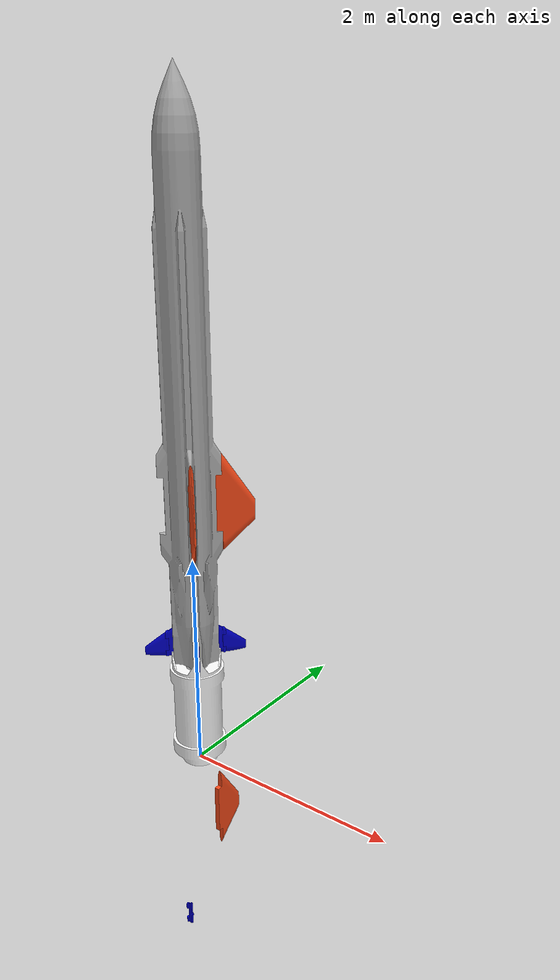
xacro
<?xml version="1.0" ?>
<robot name="exocet_mm40b3" xmlns:xacro="http://www.ros.org/wiki/xacro">

<xacro:include filename="$(find exocet_mm40b3_description)/urdf/materials.xacro" />
<xacro:include filename="$(find exocet_mm40b3_description)/urdf/exocet_mm40b3.trans" />
<xacro:include filename="$(find exocet_mm40b3_description)/urdf/exocet_mm40b3.gazebo" />
<link name="base_link">
  <inertial>
    <origin xyz="-1.4542551737212967e-07 3.654620797194591e-07 3.282550688316852" rpy="0 0 0"/>
    <mass value="3587.9487221387226"/>
    <inertia ixx="5872.45367" iyy="5872.45367" izz="59.942144" ixy="-0.0" iyz="-0.0" ixz="0.0"/>
  </inertial>
  <visual>
    <origin xyz="0 0 0" rpy="0 0 0"/>
    <geometry>
      <mesh filename="package://exocet_mm40b3_description/meshes/base_link.stl" scale="0.001 0.001 0.001"/>
    </geometry>
    <material name="silver"/>
  </visual>
  <collision>
    <origin xyz="0 0 0" rpy="0 0 0"/>
    <geometry>
      <mesh filename="package://exocet_mm40b3_description/meshes/base_link.stl" scale="0.001 0.001 0.001"/>
    </geometry>
  </collision>
</link>

<link name="Fin_1">
  <inertial>
    <origin xyz="-0.04207063686395979 0.042070952020477254 -0.016310158349904347" rpy="0 0 0"/>
    <mass value="3.7760500387858813"/>
    <inertia ixx="0.012879" iyy="0.012879" izz="0.008976" ixy="0.004366" iyz="0.001812" ixz="-0.001812"/>
  </inertial>
  <visual>
    <origin xyz="0.17708 -0.177106 -1.216174" rpy="0 0 0"/>
    <geometry>
      <mesh filename="package://exocet_mm40b3_description/meshes/Fin_1.stl" scale="0.001 0.001 0.001"/>
    </geometry>
    <material name="blue"/>
  </visual>
  <collision>
    <origin xyz="0.17708 -0.177106 -1.216174" rpy="0 0 0"/>
    <geometry>
      <mesh filename="package://exocet_mm40b3_description/meshes/Fin_1.stl" scale="0.001 0.001 0.001"/>
    </geometry>
  </collision>
</link>

<link name="FinHolder_1">
  <inertial>
    <origin xyz="-0.025727368252543487 0.025730237574824122 0.010891838967306722" rpy="0 0 0"/>
    <mass value="2.2777645968314193"/>
    <inertia ixx="0.014349" iyy="0.014349" izz="0.0009" ixy="0.000349" iyz="0.0001" ixz="-0.0001"/>
  </inertial>
  <visual>
    <origin xyz="0.13435 -0.134351 -1.216174" rpy="0 0 0"/>
    <geometry>
      <mesh filename="package://exocet_mm40b3_description/meshes/FinHolder_1.stl" scale="0.001 0.001 0.001"/>
    </geometry>
    <material name="blue"/>
  </visual>
  <collision>
    <origin xyz="0.13435 -0.134351 -1.216174" rpy="0 0 0"/>
    <geometry>
      <mesh filename="package://exocet_mm40b3_description/meshes/FinHolder_1.stl" scale="0.001 0.001 0.001"/>
    </geometry>
  </collision>
</link>

<link name="Fin_4">
  <inertial>
    <origin xyz="-0.04207073198379488 -0.042070125976482464 -0.016310158349904347" rpy="0 0 0"/>
    <mass value="3.7760500387858813"/>
    <inertia ixx="0.012879" iyy="0.012879" izz="0.008976" ixy="-0.004366" iyz="-0.001812" ixz="-0.001812"/>
  </inertial>
  <visual>
    <origin xyz="0.177106 0.17708 -1.216174" rpy="0 0 0"/>
    <geometry>
      <mesh filename="package://exocet_mm40b3_description/meshes/Fin_4.stl" scale="0.001 0.001 0.001"/>
    </geometry>
    <material name="blue"/>
  </visual>
  <collision>
    <origin xyz="0.177106 0.17708 -1.216174" rpy="0 0 0"/>
    <geometry>
      <mesh filename="package://exocet_mm40b3_description/meshes/Fin_4.stl" scale="0.001 0.001 0.001"/>
    </geometry>
  </collision>
</link>

<link name="FinHolder_4">
  <inertial>
    <origin xyz="-0.025731017538143275 -0.025726857365065164 0.010891838967306722" rpy="0 0 0"/>
    <mass value="2.2777645968314193"/>
    <inertia ixx="0.014349" iyy="0.014349" izz="0.0009" ixy="-0.000349" iyz="-0.0001" ixz="-0.0001"/>
  </inertial>
  <visual>
    <origin xyz="0.13435 0.13435 -1.216174" rpy="0 0 0"/>
    <geometry>
      <mesh filename="package://exocet_mm40b3_description/meshes/FinHolder_4.stl" scale="0.001 0.001 0.001"/>
    </geometry>
    <material name="blue"/>
  </visual>
  <collision>
    <origin xyz="0.13435 0.13435 -1.216174" rpy="0 0 0"/>
    <geometry>
      <mesh filename="package://exocet_mm40b3_description/meshes/FinHolder_4.stl" scale="0.001 0.001 0.001"/>
    </geometry>
  </collision>
</link>

<link name="Fin_3">
  <inertial>
    <origin xyz="0.04207016492600643 -0.04207040218347563 -0.016310158349879478" rpy="0 0 0"/>
    <mass value="3.7760500387858813"/>
    <inertia ixx="0.012879" iyy="0.012879" izz="0.008976" ixy="0.004366" iyz="-0.001812" ixz="0.001812"/>
  </inertial>
  <visual>
    <origin xyz="-0.177081 0.177105 -1.216174" rpy="0 0 0"/>
    <geometry>
      <mesh filename="package://exocet_mm40b3_description/meshes/Fin_3.stl" scale="0.001 0.001 0.001"/>
    </geometry>
    <material name="blue"/>
  </visual>
  <collision>
    <origin xyz="-0.177081 0.177105 -1.216174" rpy="0 0 0"/>
    <geometry>
      <mesh filename="package://exocet_mm40b3_description/meshes/Fin_3.stl" scale="0.001 0.001 0.001"/>
    </geometry>
  </collision>
</link>

<link name="FinHolder_3">
  <inertial>
    <origin xyz="0.025727077401745596 -0.025730506650665064 0.010891838967325151" rpy="0 0 0"/>
    <mass value="2.2777645968314193"/>
    <inertia ixx="0.014349" iyy="0.014349" izz="0.0009" ixy="0.000349" iyz="-0.0001" ixz="0.0001"/>
  </inertial>
  <visual>
    <origin xyz="-0.13435 0.13435 -1.216174" rpy="0 0 0"/>
    <geometry>
      <mesh filename="package://exocet_mm40b3_description/meshes/FinHolder_3.stl" scale="0.001 0.001 0.001"/>
    </geometry>
    <material name="blue"/>
  </visual>
  <collision>
    <origin xyz="-0.13435 0.13435 -1.216174" rpy="0 0 0"/>
    <geometry>
      <mesh filename="package://exocet_mm40b3_description/meshes/FinHolder_3.stl" scale="0.001 0.001 0.001"/>
    </geometry>
  </collision>
</link>

<link name="Fin_2">
  <inertial>
    <origin xyz="0.04207044113299932 0.042070856900641496 -0.016310158349879478" rpy="0 0 0"/>
    <mass value="3.7760500387858813"/>
    <inertia ixx="0.012879" iyy="0.012879" izz="0.008976" ixy="-0.004366" iyz="0.001812" ixz="0.001812"/>
  </inertial>
  <visual>
    <origin xyz="-0.177106 -0.17708 -1.216174" rpy="0 0 0"/>
    <geometry>
      <mesh filename="package://exocet_mm40b3_description/meshes/Fin_2.stl" scale="0.001 0.001 0.001"/>
    </geometry>
    <material name="blue"/>
  </visual>
  <collision>
    <origin xyz="-0.177106 -0.17708 -1.216174" rpy="0 0 0"/>
    <geometry>
      <mesh filename="package://exocet_mm40b3_description/meshes/Fin_2.stl" scale="0.001 0.001 0.001"/>
    </geometry>
  </collision>
</link>

<link name="FinHolder_2">
  <inertial>
    <origin xyz="0.025730726687345384 0.025726588289224195 0.010891838967325151" rpy="0 0 0"/>
    <mass value="2.2777645968314193"/>
    <inertia ixx="0.014349" iyy="0.014349" izz="0.0009" ixy="-0.000349" iyz="0.0001" ixz="0.0001"/>
  </inertial>
  <visual>
    <origin xyz="-0.13435 -0.134351 -1.216174" rpy="0 0 0"/>
    <geometry>
      <mesh filename="package://exocet_mm40b3_description/meshes/FinHolder_2.stl" scale="0.001 0.001 0.001"/>
    </geometry>
    <material name="blue"/>
  </visual>
  <collision>
    <origin xyz="-0.13435 -0.134351 -1.216174" rpy="0 0 0"/>
    <geometry>
      <mesh filename="package://exocet_mm40b3_description/meshes/FinHolder_2.stl" scale="0.001 0.001 0.001"/>
    </geometry>
  </collision>
</link>

<link name="Wing1_1">
  <inertial>
    <origin xyz="-0.06401343964815456 0.0640136633314072 -0.021747597482814296" rpy="0 0 0"/>
    <mass value="42.48976628506711"/>
    <inertia ixx="1.399284" iyy="1.399284" izz="0.250002" ixy="0.120279" iyz="0.044379" ixz="-0.044379"/>
  </inertial>
  <visual>
    <origin xyz="0.1681 -0.1681 -2.521299" rpy="0 0 0"/>
    <geometry>
      <mesh filename="package://exocet_mm40b3_description/meshes/Wing1_1.stl" scale="0.001 0.001 0.001"/>
    </geometry>
    <material name="orange"/>
  </visual>
  <collision>
    <origin xyz="0.1681 -0.1681 -2.521299" rpy="0 0 0"/>
    <geometry>
      <mesh filename="package://exocet_mm40b3_description/meshes/Wing1_1.stl" scale="0.001 0.001 0.001"/>
    </geometry>
  </collision>
</link>

<link name="Wing2_1">
  <inertial>
    <origin xyz="-0.06401349424860628 -0.06401389618581307 -0.021747636109048507" rpy="0 0 0"/>
    <mass value="42.48975683460527"/>
    <inertia ixx="1.399282" iyy="1.399282" izz="0.250002" ixy="-0.12028" iyz="-0.044379" ixz="-0.044379"/>
  </inertial>
  <visual>
    <origin xyz="0.1681 0.168099 -2.521299" rpy="0 0 0"/>
    <geometry>
      <mesh filename="package://exocet_mm40b3_description/meshes/Wing2_1.stl" scale="0.001 0.001 0.001"/>
    </geometry>
    <material name="orange"/>
  </visual>
  <collision>
    <origin xyz="0.1681 0.168099 -2.521299" rpy="0 0 0"/>
    <geometry>
      <mesh filename="package://exocet_mm40b3_description/meshes/Wing2_1.stl" scale="0.001 0.001 0.001"/>
    </geometry>
  </collision>
</link>

<link name="Wing3_1">
  <inertial>
    <origin xyz="0.0640141532027112 0.06401367009330869 -0.021747611087639562" rpy="0 0 0"/>
    <mass value="42.48976289872378"/>
    <inertia ixx="1.399283" iyy="1.399283" izz="0.250002" ixy="-0.120279" iyz="0.044379" ixz="0.044379"/>
  </inertial>
  <visual>
    <origin xyz="-0.168099 -0.1681 -2.521299" rpy="0 0 0"/>
    <geometry>
      <mesh filename="package://exocet_mm40b3_description/meshes/Wing3_1.stl" scale="0.001 0.001 0.001"/>
    </geometry>
    <material name="orange"/>
  </visual>
  <collision>
    <origin xyz="-0.168099 -0.1681 -2.521299" rpy="0 0 0"/>
    <geometry>
      <mesh filename="package://exocet_mm40b3_description/meshes/Wing3_1.stl" scale="0.001 0.001 0.001"/>
    </geometry>
  </collision>
</link>

<link name="Wing4_1">
  <inertial>
    <origin xyz="0.06401417767169987 -0.06401392569423553 -0.021747543358718424" rpy="0 0 0"/>
    <mass value="42.489775944812806"/>
    <inertia ixx="1.399285" iyy="1.399285" izz="0.250002" ixy="0.120279" iyz="-0.044379" ixz="0.04438"/>
  </inertial>
  <visual>
    <origin xyz="-0.168099 0.168099 -2.521299" rpy="0 0 0"/>
    <geometry>
      <mesh filename="package://exocet_mm40b3_description/meshes/Wing4_1.stl" scale="0.001 0.001 0.001"/>
    </geometry>
    <material name="orange"/>
  </visual>
  <collision>
    <origin xyz="-0.168099 0.168099 -2.521299" rpy="0 0 0"/>
    <geometry>
      <mesh filename="package://exocet_mm40b3_description/meshes/Wing4_1.stl" scale="0.001 0.001 0.001"/>
    </geometry>
  </collision>
</link>

<link name="Booster_1">
  <inertial>
    <origin xyz="-1.4542535988779183e-07 3.6546207951460027e-07 -0.4892253805514363" rpy="0 0 0"/>
    <mass value="1075.2738598517735"/>
    <inertia ixx="93.247118" iyy="93.247118" izz="25.896806" ixy="0.0" iyz="0.0" ixz="0.0"/>
  </inertial>
  <visual>
    <origin xyz="0.0 -0.0 -1.036174" rpy="0 0 0"/>
    <geometry>
      <mesh filename="package://exocet_mm40b3_description/meshes/Booster_1.stl" scale="0.001 0.001 0.001"/>
    </geometry>
    <material name="white"/>
  </visual>
  <collision>
    <origin xyz="0.0 -0.0 -1.036174" rpy="0 0 0"/>
    <geometry>
      <mesh filename="package://exocet_mm40b3_description/meshes/Booster_1.stl" scale="0.001 0.001 0.001"/>
    </geometry>
  </collision>
</link>

<joint name="fins_fold1" type="revolute">
  <origin xyz="-0.04273 0.042755 0.0" rpy="0 0 0"/>
  <parent link="FinHolder_1"/>
  <child link="Fin_1"/>
  <axis xyz="0.0 -0.0 -1.0"/>
  <limit upper="2.094395" lower="-2.094395" effort="100" velocity="100"/>
</joint>

<joint name="fins_rev1" type="revolute">
  <origin xyz="-0.13435 0.134351 1.216174" rpy="0 0 0"/>
  <parent link="base_link"/>
  <child link="FinHolder_1"/>
  <axis xyz="-0.707107 0.707107 -0.0"/>
  <limit upper="0.349066" lower="-0.349066" effort="100" velocity="100"/>
</joint>

<joint name="fins_fold2" type="revolute">
  <origin xyz="-0.042756 -0.04273 0.0" rpy="0 0 0"/>
  <parent link="FinHolder_4"/>
  <child link="Fin_4"/>
  <axis xyz="0.0 0.0 -1.0"/>
  <limit upper="2.094395" lower="-2.094395" effort="100" velocity="100"/>
</joint>

<joint name="fins_rev2" type="revolute">
  <origin xyz="-0.13435 -0.13435 1.216174" rpy="0 0 0"/>
  <parent link="base_link"/>
  <child link="FinHolder_4"/>
  <axis xyz="-0.707107 -0.707107 -0.0"/>
  <limit upper="0.349066" lower="-0.349066" effort="100" velocity="100"/>
</joint>

<joint name="fins_fold3" type="revolute">
  <origin xyz="0.042731 -0.042755 0.0" rpy="0 0 0"/>
  <parent link="FinHolder_3"/>
  <child link="Fin_3"/>
  <axis xyz="0.0 0.0 -1.0"/>
  <limit upper="2.094395" lower="-2.094395" effort="100" velocity="100"/>
</joint>

<joint name="fins_rev3" type="revolute">
  <origin xyz="0.13435 -0.13435 1.216174" rpy="0 0 0"/>
  <parent link="base_link"/>
  <child link="FinHolder_3"/>
  <axis xyz="0.707107 -0.707107 0.0"/>
  <limit upper="0.349066" lower="-0.349066" effort="100" velocity="100"/>
</joint>

<joint name="fins_fold4" type="revolute">
  <origin xyz="0.042756 0.042729 0.0" rpy="0 0 0"/>
  <parent link="FinHolder_2"/>
  <child link="Fin_2"/>
  <axis xyz="0.0 -0.0 -1.0"/>
  <limit upper="2.094395" lower="-2.094395" effort="100" velocity="100"/>
</joint>

<joint name="fins_rev4" type="revolute">
  <origin xyz="0.13435 0.134351 1.216174" rpy="0 0 0"/>
  <parent link="base_link"/>
  <child link="FinHolder_2"/>
  <axis xyz="0.707107 0.707107 0.0"/>
  <limit upper="0.349066" lower="-0.349066" effort="100" velocity="100"/>
</joint>

<joint name="wings_fold1" type="revolute">
  <origin xyz="-0.1681 0.1681 2.521299" rpy="0 0 0"/>
  <parent link="base_link"/>
  <child link="Wing1_1"/>
  <axis xyz="0.0 -0.0 -1.0"/>
  <limit upper="2.094395" lower="-2.094395" effort="100" velocity="100"/>
</joint>

<joint name="wings_fold2" type="revolute">
  <origin xyz="-0.1681 -0.168099 2.521299" rpy="0 0 0"/>
  <parent link="base_link"/>
  <child link="Wing2_1"/>
  <axis xyz="0.0 -0.0 -1.0"/>
  <limit upper="2.094395" lower="-2.094395" effort="100" velocity="100"/>
</joint>

<joint name="wings_fold3" type="revolute">
  <origin xyz="0.168099 0.1681 2.521299" rpy="0 0 0"/>
  <parent link="base_link"/>
  <child link="Wing3_1"/>
  <axis xyz="0.0 -0.0 -1.0"/>
  <limit upper="2.094395" lower="-2.094395" effort="100" velocity="100"/>
</joint>

<joint name="wings_fold4" type="revolute">
  <origin xyz="0.168099 -0.168099 2.521299" rpy="0 0 0"/>
  <parent link="base_link"/>
  <child link="Wing4_1"/>
  <axis xyz="0.0 -0.0 -1.0"/>
  <limit upper="2.094395" lower="-2.094395" effort="100" velocity="100"/>
</joint>

<joint name="Rigid19" type="fixed">
  <origin xyz="0.0 0.0 1.036174" rpy="0 0 0"/>
  <parent link="base_link"/>
  <child link="Booster_1"/>
</joint>

</robot>

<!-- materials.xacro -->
<robot name="exocet_mm40b3" xmlns:xacro="http://www.ros.org/wiki/xacro" >

<material name="silver">
  <color rgba="0.700 0.700 0.700 1.000"/>
</material>
<material name="blue">
  <color rgba="0 0 0.8 1"/>
</material>
<material name="black">
  <color rgba="0 0 0 1"/>
</material>
<material name="white">
  <color rgba="1 1 1 1"/>
</material>
<material name="orange">
  <color rgba="1 0.3 0.1 1"/>
</material>

</robot>
